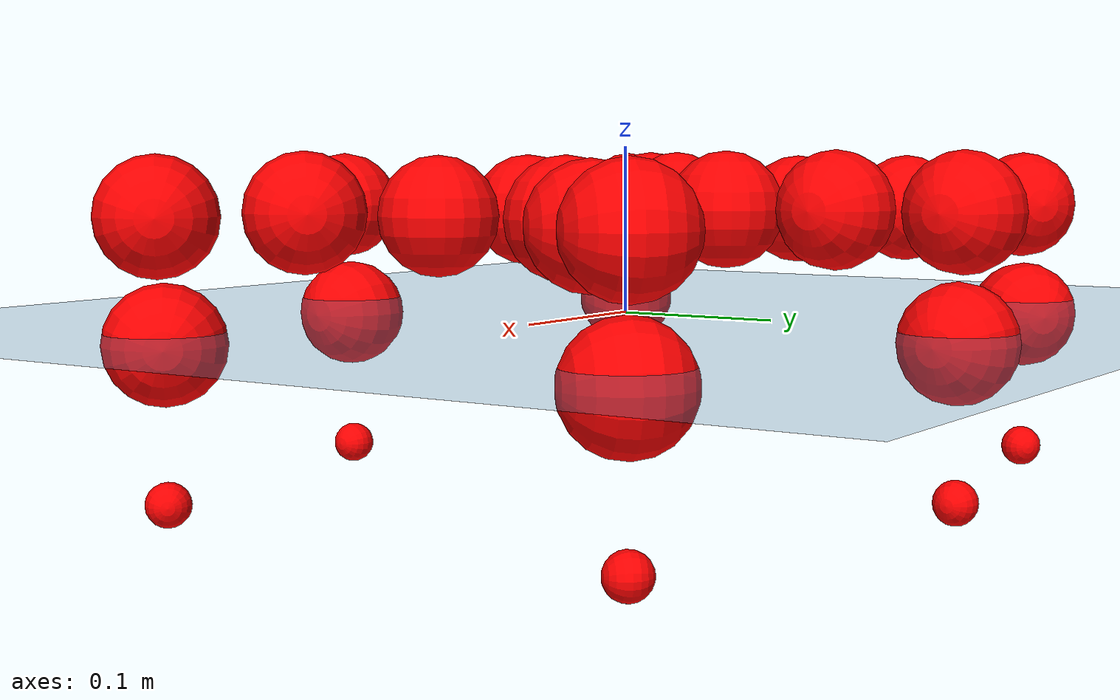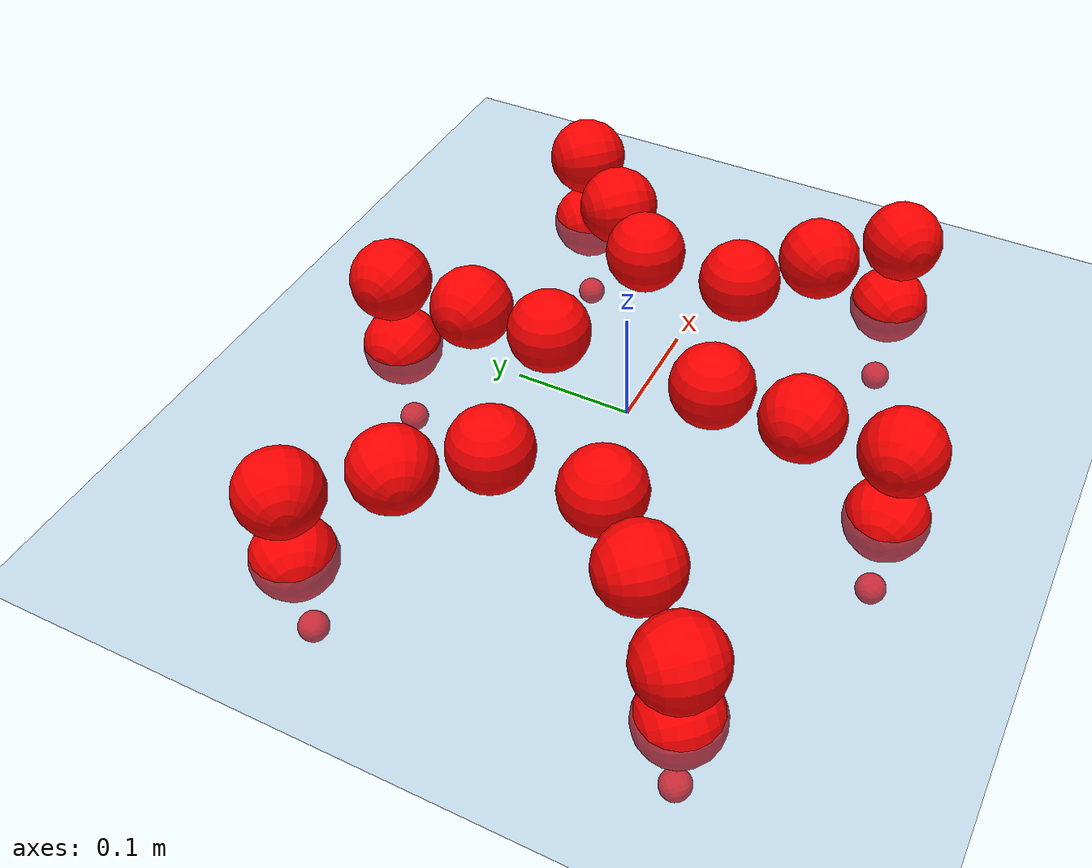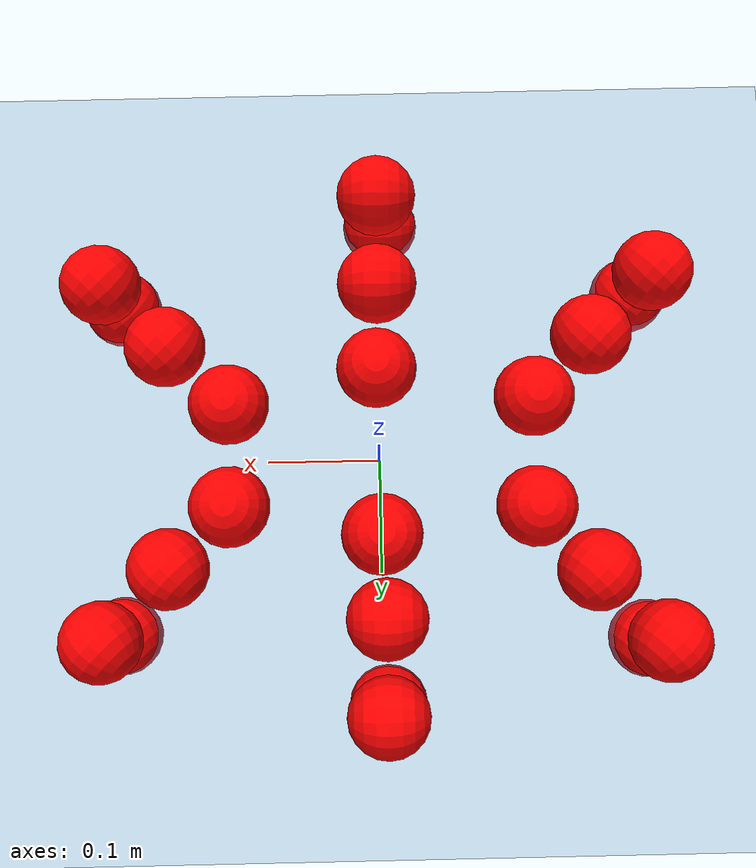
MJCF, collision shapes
<mujoco model="Golem">
  <compiler angle="radian" assetdir="assets" balanceinertia="true" inertiafromgeom="false"/>

  <option timestep="0.005" density="1.2" viscosity="2e-05"/>

  <size nkey="1"/>

  <visual>
    <quality shadowsize="8192"/>
    <map shadowclip="0.5"/>
  </visual>

  <default>
    <default class="/">
      <joint armature="0.01" damping="0.01" frictionloss="0.01"/>
      <geom contype="0" conaffinity="0" group="1" solref="-1000 -80"/>
      <site size="0.01 0.005 0.005" group="5"/>
      <general forcelimited="true" biastype="affine" gainprm="25" biasprm="0 -25 -0.5"/>
      <default class="visual">
        <geom type="mesh" group="2"/>
      </default>
      <default class="collision">
        <geom group="3"/>
      </default>
      <default class="foot">
        <geom size="0.01 0 0" condim="6" group="4" priority="1" solimp="0.015 1 0.01"/>
      </default>
      <default class="reward_collision_sphere">
        <geom group="5" rgba="1 0 0 1"/>
      </default>
    </default>
  </default>

  <asset>
    <texture type="skybox" colorspace="auto" name="//unnamed_texture_0" builtin="gradient" rgb1="0.95 0.95 0.95" rgb2="0.95 0.95 0.95" width="100" height="600"/>
    <texture type="2d" colorspace="auto" name="texplane" builtin="checker" rgb1="0.345 0.575 0.748" rgb2="0.345 0.575 0.748" markrgb="1 1 1" width="512" height="512"/>
    <material name="MatPlane" class="/" texture="texplane" texuniform="true" texrepeat="2 2" specular="0.9"/>
    <mesh name="body" class="/" file="body.stl" scale="0.001 0.001 0.001"/>
    <mesh name="coxa" class="/" file="coxa.stl" scale="0.001 0.001 0.001"/>
    <mesh name="femur" class="/" file="femur.stl" scale="0.001 0.001 0.001"/>
    <mesh name="tibia" class="/" file="tibia.stl" scale="0.001 0.001 0.001"/>
    <mesh name="tarsus" class="/" file="tarsus.stl" scale="0.001 0.001 0.001"/>
  </asset>

  <worldbody>
    <geom name="floor" class="/" size="100 100 0.125" type="plane" group="0" material="MatPlane"/>
    <light name="toplight_shadow" class="/" pos="0 0 5" dir="0.0990148 0.0990148 -0.990148" type="directional" ambient="0.04 0.04 0.04" diffuse="0.55 0.55 0.55" specular="0.12 0.12 0.12"/>
    <light name="toplight_fill" class="/" pos="0 0 5" dir="0.0990148 0.0990148 -0.990148" type="directional" castshadow="false" ambient="0.04 0.04 0.04" diffuse="0.3 0.3 0.3" specular="0.08 0.08 0.08"/>
    <body name="trunk" pos="-0.000970602 0.000160543 -0.00263942" quat="1 2.15106e-05 -0.000183268 -1.06563e-05">
      <inertial pos="0.000675332 0.00176276 -0.00535519" quat="1 8.70611e-06 0.000189798 0.000118039" mass="2.39328" diaginertia="0.00389231 0.00218785 0.0107323"/>
      <joint name="//unnamed_joint_0" type="free"/>
      <geom name="//unnamed_geom_1" class="/" pos="0 0 0.0646662" quat="1 0 0 0" type="mesh" rgba="0.9 0.9 0.9 1" mesh="body"/>
      <site name="imu" class="/" pos="0.105999 -0.000370722 0.113107" size="0.00856187"/>
      <camera name="track" class="/" pos="0 -1.47029 0" quat="0.707107 0.707107 0 0" mode="trackcom"/>
      <camera name="ego_camera" class="/" pos="0.106991 0 0.101041" quat="-0.5 -0.5 0.5 0.5"/>
      <body name="coxa_RR" pos="-0.148423 -0.0623665 0.0646511" quat="0.381648 0.000613231 0.000292636 -0.924308">
        <inertial pos="-0.00277179 -0.0012134 0.000135749" quat="0.999925 -0.00392051 -0.0111625 -0.00322857" mass="0.124612" diaginertia="0.00377138 0.002126 0.0101112"/>
        <joint name="coxa_joint_RR" class="/" pos="0 0 0" axis="0.00324014 -0.00221388 -0.999992" stiffness="0.000661481" range="-3.1461 3.11875" armature="0.00886249" damping="0.0116169" frictionloss="0.00961582"/>
        <geom name="//unnamed_geom_2" class="/" type="mesh" rgba="0.2 0.2 0.2 1" mesh="coxa"/>
        <geom name="//unnamed_geom_3" class="reward_collision_sphere" size="0.0342475" pos="-0.0246902 0 0"/>
        <body name="femur_RR" pos="0.0483958 0.00162677 -0.000209242" quat="0.499979 -0.500138 0.499917 0.499966">
          <inertial pos="-9.67317e-05 -8.16224e-05 0.00257814" quat="1 -0.000109659 -0.000411579 1.76489e-05" mass="0.126053" diaginertia="0.00378179 0.00216249 0.0102374"/>
          <joint name="femur_joint_RR" class="/" pos="0 0 0" axis="0.00213746 0.0111503 -0.999936" range="-3.15678 3.14192" armature="0.00837212" damping="0" frictionloss="0.00888588"/>
          <geom name="//unnamed_geom_4" class="/" type="mesh" rgba="0.9 0.9 0.9 1" mesh="femur"/>
          <geom name="//unnamed_geom_5" class="reward_collision_sphere" size="0.0342475"/>
          <body name="tibia_RR" pos="0.0010103 -0.0791448 -0.000515328" quat="3.61367e-05 1 5.62542e-05 -3.62273e-05">
            <inertial pos="-0.000386178 0.00262779 -0.0026389" quat="0.999922 0.00534051 -0.00747335 -0.00845304" mass="0.124563" diaginertia="0.00363746 0.00214596 0.010324"/>
            <joint name="tibia_joint_RR" class="/" pos="0 0 0" axis="-0.000133672 9.61155e-05 1" stiffness="0.00232045" range="-3.1379 3.10199" armature="0.00836011" damping="0.00754384" frictionloss="0.00830869"/>
            <geom name="//unnamed_geom_6" class="/" type="mesh" rgba="0.2 0.2 0.2 1" mesh="tibia"/>
            <geom name="//unnamed_geom_7" class="reward_collision_sphere" size="0.0342475"/>
            <body name="tarsus_RR" pos="0.0730685 -0.0027552 -0.00288757" quat="0.999999 0.0011642 0.000585026 -0.000228572">
              <inertial pos="0.0484399 -0.00229745 -5.82274e-05" quat="0.502452 0.495752 0.499855 0.501912" mass="0.123061" diaginertia="0.00379496 0.00223839 0.0107491"/>
              <joint name="tarsus_joint_RR" class="/" pos="0 0 0" axis="-0.00161825 -0.00386286 0.999991" range="-3.13586 3.14239" armature="0.00831831" damping="0" frictionloss="0.00894171"/>
              <geom name="//unnamed_geom_8" class="/" type="mesh" rgba="0.9 0.9 0.9 1" mesh="tarsus"/>
              <geom name="foot_1" class="foot" size="0.00858452" pos="0.0921767 0 0" quat="0 -0.707107 0 0.707107"/>
              <geom name="//unnamed_geom_10" class="reward_collision_sphere" size="0.0342475"/>
              <geom name="//unnamed_geom_11" class="reward_collision_sphere" size="0.0128428" pos="0.0884732 0 0"/>
              <site name="foot_1" class="foot" pos="0.0921767 0 0" quat="0 -0.707107 0 0.707107" size="0.00856187"/>
            </body>
          </body>
        </body>
      </body>
      <body name="coxa_RM" pos="0.00191431 -0.0969521 0.0636946" quat="0.707052 0.00029306 0.000180282 -0.707162">
        <inertial pos="-7.77038e-05 -0.00120181 -0.00237545" quat="0.999991 -0.000325317 0.00176721 0.00387884" mass="0.122526" diaginertia="0.00358797 0.00202827 0.0102377"/>
        <joint name="coxa_joint_RM" class="/" pos="0 0 0" axis="-0.00355609 -0.00274035 -0.99999" range="-3.1347 3.15499" armature="0.00846842" damping="0.0148282" frictionloss="0.00913937"/>
        <geom name="//unnamed_geom_12" class="/" type="mesh" rgba="0.2 0.2 0.2 1" mesh="coxa"/>
        <geom name="//unnamed_geom_13" class="reward_collision_sphere" size="0.0342475" pos="-0.0246902 0 0"/>
        <body name="femur_RM" pos="0.0498232 -0.00171785 -0.000932541" quat="0.499874 -0.500162 0.500801 0.499161">
          <inertial pos="0.000993304 -0.00154306 0.000417339" quat="0.999911 0.00574235 0.00959229 -0.00727404" mass="0.123796" diaginertia="0.00388478 0.00213506 0.0104385"/>
          <joint name="femur_joint_RM" class="/" pos="0 0 0" axis="0.00169776 -0.00181412 -0.999997" stiffness="0.00164815" range="-3.18721 3.18685" armature="0.00970609" damping="0.0255486" frictionloss="0.00834488"/>
          <geom name="//unnamed_geom_14" class="/" type="mesh" rgba="0.9 0.9 0.9 1" mesh="femur"/>
          <geom name="//unnamed_geom_15" class="reward_collision_sphere" size="0.0342475"/>
          <body name="tibia_RM" pos="-0.00137238 -0.0787888 -0.000696313" quat="1.15164e-05 1 -0.000161613 1.96021e-05">
            <inertial pos="0.000619997 0.000390003 -0.00247083" quat="0.999935 -0.0114134 -0.000360205 -0.000674316" mass="0.117853" diaginertia="0.00364789 0.00208612 0.0105488"/>
            <joint name="tibia_joint_RM" class="/" pos="0 0 0" axis="0.00375597 -0.00437198 0.999983" stiffness="0.00556452" range="-3.18572 3.09144" armature="0.00754301" damping="0" frictionloss="0.00880948"/>
            <geom name="//unnamed_geom_16" class="/" type="mesh" rgba="0.2 0.2 0.2 1" mesh="tibia"/>
            <geom name="//unnamed_geom_17" class="reward_collision_sphere" size="0.0342475"/>
            <body name="tarsus_RM" pos="0.0725296 -0.00158381 0.00322556" quat="1 1.29763e-05 -3.02208e-05 -3.57602e-05">
              <inertial pos="0.0494801 0.000761551 0.000244214" quat="0.506827 0.502159 0.496835 0.494083" mass="0.125682" diaginertia="0.00383132 0.00215198 0.0106869"/>
              <joint name="tarsus_joint_RM" class="/" pos="0 0 0" axis="-0.00359954 -0.00259891 0.99999" range="-3.13817 3.19041" armature="0.00869669" damping="0" frictionloss="0.00899477"/>
              <geom name="//unnamed_geom_18" class="/" type="mesh" rgba="0.9 0.9 0.9 1" mesh="tarsus"/>
              <geom name="foot_2" class="foot" size="0.00776285" pos="0.0921767 0 0" quat="0 -0.707107 0 0.707107"/>
              <geom name="//unnamed_geom_20" class="reward_collision_sphere" size="0.0342475"/>
              <geom name="//unnamed_geom_21" class="reward_collision_sphere" size="0.0128428" pos="0.0884732 0 0"/>
              <site name="foot_2" class="foot" pos="0.0921767 0 0" quat="0 -0.707107 0 0.707107" size="0.00856187"/>
            </body>
          </body>
        </body>
      </body>
      <body name="coxa_RF" pos="0.145119 -0.0604298 0.0641633" quat="0.924019 -0.00103498 -0.000733487 -0.382345">
        <inertial pos="0.0026357 -0.00251271 0.00136663" quat="0.999986 0.00307188 0.00406743 -0.00154284" mass="0.12626" diaginertia="0.00387591 0.00213949 0.0105314"/>
        <joint name="coxa_joint_RF" class="/" pos="0 0 0" axis="0.00897458 -0.000303098 -0.99996" range="-3.13679 3.15745" armature="0.00858257" damping="0" frictionloss="0.00865543"/>
        <geom name="//unnamed_geom_22" class="/" type="mesh" rgba="0.2 0.2 0.2 1" mesh="coxa"/>
        <geom name="//unnamed_geom_23" class="reward_collision_sphere" size="0.0342475" pos="-0.0246902 0 0"/>
        <body name="femur_RF" pos="0.0491848 0.00223369 0.00229272" quat="0.500175 -0.499155 0.499679 0.500989">
          <inertial pos="-0.000569299 0.000268606 -4.9629e-05" quat="0.999987 0.00407426 0.00295604 0.000329343" mass="0.125227" diaginertia="0.0037683 0.00212497 0.0104665"/>
          <joint name="femur_joint_RF" class="/" pos="0 0 0" axis="-0.00413966 -0.00203273 -0.999989" range="-3.12895 3.15555" armature="0.00891304" damping="0.0112792" frictionloss="0.00832387"/>
          <geom name="//unnamed_geom_24" class="/" type="mesh" rgba="0.9 0.9 0.9 1" mesh="femur"/>
          <geom name="//unnamed_geom_25" class="reward_collision_sphere" size="0.0342475"/>
          <body name="tibia_RF" pos="0.00155352 -0.0794209 -5.19871e-05" quat="-0.000558967 1 -0.000149078 -8.9075e-05">
            <inertial pos="7.87532e-05 -0.00208883 -0.00028942" quat="1 0.000121915 -0.000179712 -4.97716e-05" mass="0.121565" diaginertia="0.00366684 0.00206252 0.0105183"/>
            <joint name="tibia_joint_RF" class="/" pos="0 0 0" axis="0.000738656 -0.0041171 0.999991" stiffness="0.00369842" range="-3.13597 3.09039" armature="0.00850354" damping="0" frictionloss="0.00859102"/>
            <geom name="//unnamed_geom_26" class="/" type="mesh" rgba="0.2 0.2 0.2 1" mesh="tibia"/>
            <geom name="//unnamed_geom_27" class="reward_collision_sphere" size="0.0342475"/>
            <body name="tarsus_RF" pos="0.0701619 -0.00302414 0.000717607" quat="1 1.4594e-06 -0.000837325 -3.87666e-05">
              <inertial pos="0.0486991 0.000501244 -0.00112281" quat="0.500062 0.500523 0.50001 0.499404" mass="0.127648" diaginertia="0.00378795 0.0022256 0.0106458"/>
              <joint name="tarsus_joint_RF" class="/" pos="0 0 0" axis="0.00349429 0.00188819 0.999992" range="-3.15101 3.16021" armature="0.00810206" damping="0" frictionloss="0.00886136"/>
              <geom name="//unnamed_geom_28" class="/" type="mesh" rgba="0.9 0.9 0.9 1" mesh="tarsus"/>
              <geom name="foot_3" class="foot" size="0.00829818" pos="0.0921767 0 0" quat="0 -0.707107 0 0.707107"/>
              <geom name="//unnamed_geom_30" class="reward_collision_sphere" size="0.0342475"/>
              <geom name="//unnamed_geom_31" class="reward_collision_sphere" size="0.0128428" pos="0.0884732 0 0"/>
              <site name="foot_3" class="foot" pos="0.0921767 0 0" quat="0 -0.707107 0 0.707107" size="0.00856187"/>
            </body>
          </body>
        </body>
      </body>
      <body name="coxa_LR" pos="-0.147356 0.0654325 0.0627928" quat="0.382666 0.000146798 -0.000256975 0.923887">
        <inertial pos="0.000575368 0.000221951 -0.00165391" quat="0.999959 0.00479597 -0.00616313 0.00449002" mass="0.121586" diaginertia="0.00365169 0.00213269 0.010261"/>
        <joint name="coxa_joint_LR" class="/" pos="0 0 0" axis="0.00274762 -0.00602891 -0.999978" stiffness="0.0054349" range="-3.13766 3.15545" armature="0.00843529" damping="0.0161873" frictionloss="0.00946122"/>
        <geom name="//unnamed_geom_32" class="/" type="mesh" rgba="0.2 0.2 0.2 1" mesh="coxa"/>
        <geom name="//unnamed_geom_33" class="reward_collision_sphere" size="0.0342475" pos="-0.0246902 0 0"/>
        <body name="femur_LR" pos="0.0480475 -0.0036455 0.000175087" quat="0.500586 -0.500036 0.499877 0.499501">
          <inertial pos="-0.000398797 -0.000255419 -0.00285097" quat="0.999995 0.000397475 0.00166423 0.00272326" mass="0.122579" diaginertia="0.00365351 0.00207479 0.0101409"/>
          <joint name="femur_joint_LR" class="/" pos="0 0 0" axis="-0.00766057 -0.0107485 0.999913" range="-3.14734 3.13805" armature="0.00912357" damping="0.0110342" frictionloss="0.00883395"/>
          <geom name="//unnamed_geom_34" class="/" type="mesh" rgba="0.9 0.9 0.9 1" mesh="femur"/>
          <geom name="//unnamed_geom_35" class="reward_collision_sphere" size="0.0342475"/>
          <body name="tibia_LR" pos="-0.00153054 -0.0806877 -0.00241934" quat="-1.34494e-06 1 3.13435e-05 3.23625e-06">
            <inertial pos="0.000179534 0.00262012 -0.000330951" quat="0.999986 0.00387748 -0.00287251 0.00225584" mass="0.127379" diaginertia="0.00369943 0.00217072 0.0109896"/>
            <joint name="tibia_joint_LR" class="/" pos="0 0 0" axis="-0.00931862 0.00803006 -0.999924" range="-3.09493 3.08683" armature="0.00967057" damping="0" frictionloss="0.0092633"/>
            <geom name="//unnamed_geom_36" class="/" type="mesh" rgba="0.2 0.2 0.2 1" mesh="tibia"/>
            <geom name="//unnamed_geom_37" class="reward_collision_sphere" size="0.0342475"/>
            <body name="tarsus_LR" pos="0.0729443 0.00142619 0.000701622" quat="1 4.11219e-05 0.000235692 0.000469341">
              <inertial pos="0.0523338 0.00110158 -0.00239521" quat="0.499895 0.500282 0.499878 0.499944" mass="0.124867" diaginertia="0.00382815 0.0021598 0.0103496"/>
              <joint name="tarsus_joint_LR" class="/" pos="0 0 0" axis="0.00199771 -0.00318793 -0.999993" range="-3.11573 3.12123" armature="0.00770229" damping="0.0164624" frictionloss="0.00849338"/>
              <geom name="//unnamed_geom_38" class="/" type="mesh" rgba="0.9 0.9 0.9 1" mesh="tarsus"/>
              <geom name="foot_4" class="foot" size="0.00871977" pos="0.0921767 0 0" quat="0.707107 0 -0.707107 0"/>
              <geom name="//unnamed_geom_40" class="reward_collision_sphere" size="0.0342475"/>
              <geom name="//unnamed_geom_41" class="reward_collision_sphere" size="0.0128428" pos="0.0884732 0 0"/>
              <site name="foot_4" class="foot" pos="0.0921767 0 0" quat="0.707107 0 -0.707107 0" size="0.00856187"/>
            </body>
          </body>
        </body>
      </body>
      <body name="coxa_LM" pos="3.9621e-05 0.0936688 0.0663433" quat="0.706978 -0.000331936 -0.000141951 0.707235">
        <inertial pos="0.000293211 -0.00262525 0.00266784" quat="0.999998 0.00093446 -0.00100382 0.00152417" mass="0.129083" diaginertia="0.00384984 0.00217504 0.0107387"/>
        <joint name="coxa_joint_LM" class="/" pos="0 0 0" axis="-0.00481385 -0.0105974 -0.999932" range="-3.1458 3.14965" armature="0.007437" damping="0.00985378" frictionloss="0.00855847"/>
        <geom name="//unnamed_geom_42" class="/" type="mesh" rgba="0.2 0.2 0.2 1" mesh="coxa"/>
        <geom name="//unnamed_geom_43" class="reward_collision_sphere" size="0.0342475" pos="-0.0246902 0 0"/>
        <body name="femur_LM" pos="0.0451924 0.00288825 0.000877786" quat="0.499998 -0.500039 0.499955 0.500008">
          <inertial pos="-0.00267554 0.000990096 -0.00149645" quat="0.999998 0.000461194 -0.00169764 0.000383174" mass="0.121394" diaginertia="0.00368628 0.00209979 0.0100505"/>
          <joint name="femur_joint_LM" class="/" pos="0 0 0" axis="0.0126665 -0.00818559 0.999886" stiffness="0.00516678" range="-3.13614 3.13661" armature="0.00893542" damping="0.0035462" frictionloss="0.00949153"/>
          <geom name="//unnamed_geom_44" class="/" type="mesh" rgba="0.9 0.9 0.9 1" mesh="femur"/>
          <geom name="//unnamed_geom_45" class="reward_collision_sphere" size="0.0342475"/>
          <body name="tibia_LM" pos="-0.000228629 -0.0782428 -0.000524624" quat="6.71408e-05 1 -4.85553e-05 0.000440399">
            <inertial pos="-0.00121251 -0.000251618 0.00199783" quat="0.999941 0.00946209 -0.00174451 -0.00509772" mass="0.122235" diaginertia="0.00375355 0.0021637 0.0102889"/>
            <joint name="tibia_joint_LM" class="/" pos="0 0 0" axis="-0.00277923 0.00414873 -0.999988" stiffness="0.00360774" range="-3.14873 3.18978" armature="0.00798921" damping="0" frictionloss="0.00860893"/>
            <geom name="//unnamed_geom_46" class="/" type="mesh" rgba="0.2 0.2 0.2 1" mesh="tibia"/>
            <geom name="//unnamed_geom_47" class="reward_collision_sphere" size="0.0342475"/>
            <body name="tarsus_LM" pos="0.0720806 -0.00270836 -0.000616615" quat="1 -3.99681e-05 9.74383e-06 1.23347e-05">
              <inertial pos="0.0520589 0.00134946 0.000775964" quat="0.500001 0.499998 0.500006 0.499995" mass="0.125027" diaginertia="0.00382598 0.00217013 0.0107396"/>
              <joint name="tarsus_joint_LM" class="/" pos="0 0 0" axis="0.00210397 0.00351692 -0.999992" range="-3.14584 3.12727" armature="0.00872505" damping="0" frictionloss="0.00897785"/>
              <geom name="//unnamed_geom_48" class="/" type="mesh" rgba="0.9 0.9 0.9 1" mesh="tarsus"/>
              <geom name="foot_5" class="foot" size="0.0085677" pos="0.0921767 0 0" quat="0.707107 0 -0.707107 0"/>
              <geom name="//unnamed_geom_50" class="reward_collision_sphere" size="0.0342475"/>
              <geom name="//unnamed_geom_51" class="reward_collision_sphere" size="0.0128428" pos="0.0884732 0 0"/>
              <site name="foot_5" class="foot" pos="0.0921767 0 0" quat="0.707107 0 -0.707107 0" size="0.00856187"/>
            </body>
          </body>
        </body>
      </body>
      <body name="coxa_LF" pos="0.144499 0.0611856 0.0645277" quat="0.923745 9.79716e-05 0.000492113 0.383007">
        <inertial pos="0.002314 -0.000275553 -0.000347382" quat="0.999912 0.0053461 -0.00276388 0.0117978" mass="0.126387" diaginertia="0.00389975 0.0021196 0.0105316"/>
        <joint name="coxa_joint_LF" class="/" pos="0 0 0" axis="-0.00315653 -0.000200098 -0.999995" range="-3.15399 3.08762" armature="0.00830261" damping="0.0135982" frictionloss="0.00850863"/>
        <geom name="//unnamed_geom_52" class="/" type="mesh" rgba="0.2 0.2 0.2 1" mesh="coxa"/>
        <geom name="//unnamed_geom_53" class="reward_collision_sphere" size="0.0342475" pos="-0.0246902 0 0"/>
        <body name="femur_LF" pos="0.0468508 -0.000324654 -0.00103967" quat="0.500316 -0.500009 0.499599 0.500076">
          <inertial pos="-0.00237192 0.00166036 -0.000562916" quat="1 0.00028628 2.08516e-05 -0.000680534" mass="0.126593" diaginertia="0.00366124 0.0021495 0.0105026"/>
          <joint name="femur_joint_LF" class="/" pos="0 0 0" axis="0.00346149 -0.0139605 0.999897" range="-3.1914 3.14532" armature="0.00855956" damping="0" frictionloss="0.00852725"/>
          <geom name="//unnamed_geom_54" class="/" type="mesh" rgba="0.9 0.9 0.9 1" mesh="femur"/>
          <geom name="//unnamed_geom_55" class="reward_collision_sphere" size="0.0342475"/>
          <body name="tibia_LF" pos="-0.00150207 -0.0797468 0.0029561" quat="0.000337371 1 -0.000822884 0.000256629">
            <inertial pos="-0.00231385 0.0003981 0.000537366" quat="0.999916 0.00861915 0.00911292 -0.00334631" mass="0.129552" diaginertia="0.00369641 0.00213289 0.0106002"/>
            <joint name="tibia_joint_LF" class="/" pos="0 0 0" axis="-0.000944133 0.00341933 -0.999994" range="-3.13986 3.14096" armature="0.00876641" damping="0.00456104" frictionloss="0.008954"/>
            <geom name="//unnamed_geom_56" class="/" type="mesh" rgba="0.2 0.2 0.2 1" mesh="tibia"/>
            <geom name="//unnamed_geom_57" class="reward_collision_sphere" size="0.0342475"/>
            <body name="tarsus_LF" pos="0.0728885 -0.00198787 0.000912984" quat="1 0.00019873 1.12343e-05 -0.000140683">
              <inertial pos="0.0486893 0.000533906 -0.00209427" quat="0.498501 0.504508 0.498019 0.498945" mass="0.117547" diaginertia="0.00363367 0.00207529 0.0101362"/>
              <joint name="tarsus_joint_LF" class="/" pos="0 0 0" axis="0.000358575 -0.00217182 -0.999998" range="-3.1195 3.15135" armature="0.00841089" damping="0.0234665" frictionloss="0.00880014"/>
              <geom name="//unnamed_geom_58" class="/" type="mesh" rgba="0.9 0.9 0.9 1" mesh="tarsus"/>
              <geom name="foot_6" class="foot" size="0.00910575" pos="0.0921767 0 0" quat="0.707107 0 -0.707107 0"/>
              <geom name="//unnamed_geom_60" class="reward_collision_sphere" size="0.0342475"/>
              <geom name="//unnamed_geom_61" class="reward_collision_sphere" size="0.0128428" pos="0.0884732 0 0"/>
              <site name="foot_6" class="foot" pos="0.0921767 0 0" quat="0.707107 0 -0.707107 0" size="0.00856187"/>
            </body>
          </body>
        </body>
      </body>
    </body>
  </worldbody>

  <contact>
    <pair class="/" geom1="floor" geom2="foot_1" name="//unnamed_contact_0"/>
    <pair class="/" geom1="floor" geom2="foot_2" name="//unnamed_contact_1"/>
    <pair class="/" geom1="floor" geom2="foot_3" name="//unnamed_contact_2"/>
    <pair class="/" geom1="floor" geom2="foot_4" name="//unnamed_contact_3"/>
    <pair class="/" geom1="floor" geom2="foot_5" name="//unnamed_contact_4"/>
    <pair class="/" geom1="floor" geom2="foot_6" name="//unnamed_contact_5"/>
  </contact>

  <actuator>
    <general name="coxa_joint_RR" class="/" joint="coxa_joint_RR" forcerange="-6.19778 6.19778" gainprm="20.9212" biasprm="0 -20.9212 -0.459748"/>
    <general name="femur_joint_RR" class="/" joint="femur_joint_RR" forcerange="-6.56861 6.56861" gainprm="20.9212" biasprm="0 -20.9212 -0.459748"/>
    <general name="tibia_joint_RR" class="/" joint="tibia_joint_RR" forcerange="-5.67139 5.67139" gainprm="20.9212" biasprm="0 -20.9212 -0.459748"/>
    <general name="tarsus_joint_RR" class="/" joint="tarsus_joint_RR" forcerange="-6.19449 6.19449" gainprm="20.9212" biasprm="0 -20.9212 -0.459748"/>
    <general name="coxa_joint_RM" class="/" joint="coxa_joint_RM" forcerange="-6.85504 6.85504" gainprm="20.9212" biasprm="0 -20.9212 -0.459748"/>
    <general name="femur_joint_RM" class="/" joint="femur_joint_RM" forcerange="-6.15567 6.15567" gainprm="20.9212" biasprm="0 -20.9212 -0.459748"/>
    <general name="tibia_joint_RM" class="/" joint="tibia_joint_RM" forcerange="-6.22454 6.22454" gainprm="20.9212" biasprm="0 -20.9212 -0.459748"/>
    <general name="tarsus_joint_RM" class="/" joint="tarsus_joint_RM" forcerange="-5.66786 5.66786" gainprm="20.9212" biasprm="0 -20.9212 -0.459748"/>
    <general name="coxa_joint_RF" class="/" joint="coxa_joint_RF" forcerange="-6.78853 6.78853" gainprm="20.9212" biasprm="0 -20.9212 -0.459748"/>
    <general name="femur_joint_RF" class="/" joint="femur_joint_RF" forcerange="-6.22865 6.22865" gainprm="20.9212" biasprm="0 -20.9212 -0.459748"/>
    <general name="tibia_joint_RF" class="/" joint="tibia_joint_RF" forcerange="-6.14976 6.14976" gainprm="20.9212" biasprm="0 -20.9212 -0.459748"/>
    <general name="tarsus_joint_RF" class="/" joint="tarsus_joint_RF" forcerange="-6.22467 6.22467" gainprm="20.9212" biasprm="0 -20.9212 -0.459748"/>
    <general name="coxa_joint_LR" class="/" joint="coxa_joint_LR" forcerange="-6.86921 6.86921" gainprm="20.9212" biasprm="0 -20.9212 -0.459748"/>
    <general name="femur_joint_LR" class="/" joint="femur_joint_LR" forcerange="-6.2406 6.2406" gainprm="20.9212" biasprm="0 -20.9212 -0.459748"/>
    <general name="tibia_joint_LR" class="/" joint="tibia_joint_LR" forcerange="-6.70931 6.70931" gainprm="20.9212" biasprm="0 -20.9212 -0.459748"/>
    <general name="tarsus_joint_LR" class="/" joint="tarsus_joint_LR" forcerange="-6.87757 6.87757" gainprm="20.9212" biasprm="0 -20.9212 -0.459748"/>
    <general name="coxa_joint_LM" class="/" joint="coxa_joint_LM" forcerange="-5.6833 5.6833" gainprm="20.9212" biasprm="0 -20.9212 -0.459748"/>
    <general name="femur_joint_LM" class="/" joint="femur_joint_LM" forcerange="-6.06878 6.06878" gainprm="20.9212" biasprm="0 -20.9212 -0.459748"/>
    <general name="tibia_joint_LM" class="/" joint="tibia_joint_LM" forcerange="-6.85725 6.85725" gainprm="20.9212" biasprm="0 -20.9212 -0.459748"/>
    <general name="tarsus_joint_LM" class="/" joint="tarsus_joint_LM" forcerange="-6.86529 6.86529" gainprm="20.9212" biasprm="0 -20.9212 -0.459748"/>
    <general name="coxa_joint_LF" class="/" joint="coxa_joint_LF" forcerange="-5.81375 5.81375" gainprm="20.9212" biasprm="0 -20.9212 -0.459748"/>
    <general name="femur_joint_LF" class="/" joint="femur_joint_LF" forcerange="-5.84317 5.84317" gainprm="20.9212" biasprm="0 -20.9212 -0.459748"/>
    <general name="tibia_joint_LF" class="/" joint="tibia_joint_LF" forcerange="-6.4132 6.4132" gainprm="20.9212" biasprm="0 -20.9212 -0.459748"/>
    <general name="tarsus_joint_LF" class="/" joint="tarsus_joint_LF" forcerange="-6.17061 6.17061" gainprm="20.9212" biasprm="0 -20.9212 -0.459748"/>
  </actuator>

  <sensor>
    <gyro site="imu" name="imu_angular_velocity"/>
    <velocimeter site="imu" name="imu_linear_velocity"/>
    <framelinvel objtype="site" objname="foot_1" name="foot_1_global_linear_velocity"/>
    <framelinvel objtype="site" objname="foot_2" name="foot_2_global_linear_velocity"/>
    <framelinvel objtype="site" objname="foot_3" name="foot_3_global_linear_velocity"/>
    <framelinvel objtype="site" objname="foot_4" name="foot_4_global_linear_velocity"/>
    <framelinvel objtype="site" objname="foot_5" name="foot_5_global_linear_velocity"/>
    <framelinvel objtype="site" objname="foot_6" name="foot_6_global_linear_velocity"/>
  </sensor>

  <keyframe>
    <key name="home" qpos="0 0 0.1457 1 0 0 0 0 0 0 0 0 0 0 0 0 0 0 0 0 0 0 0 0 0 0 0 0 0 0 0"/>
  </keyframe>
</mujoco>
